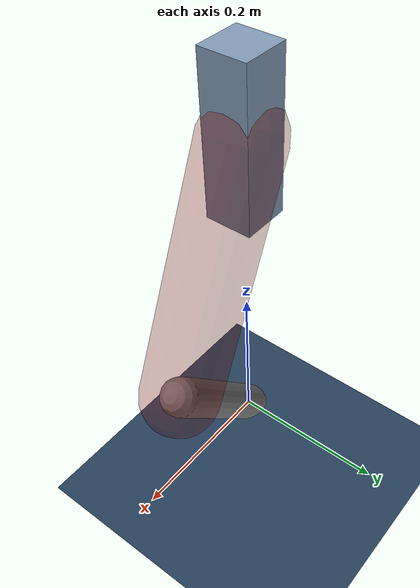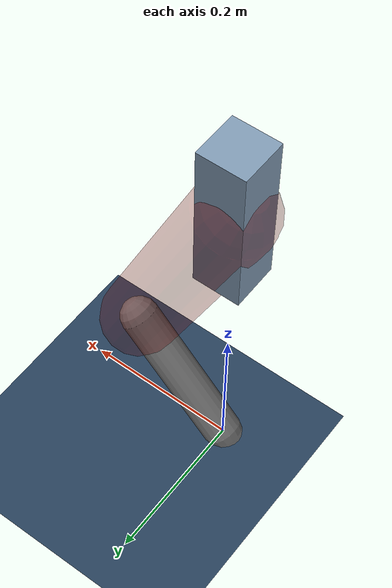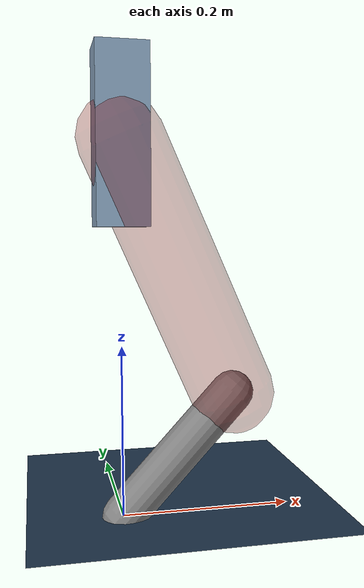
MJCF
<mujoco model="Hopper2D">
	<compiler inertiafromgeom="true" angle="radian" />
	<option timestep="0.001" integrator="implicit" cone="elliptic" solver="Newton" tolerance="1e-10" />

	<default>
		<geom contype="1" conaffinity="1" condim="3" friction="2 0.005 0.0001" solref="0.005 1" />
		<joint limited="true" damping="0.1" />
	</default>

	<asset>
		<texture name="skybox" type="skybox" builtin="gradient" rgb1=".4 .6 .8" rgb2="0 0 0" width="800" height="800" />
		<texture name="grid" type="2d" builtin="checker" rgb1=".1 .2 .3" rgb2=".2 .3 .4" width="300" height="300" mark="edge" markrgb=".2 .3 .4" />
		<material name="ground" texture="grid" texrepeat="1 1" texuniform="true" reflectance="0.1" />
		<material name="leg" rgba="0.5 0.6 0.7 1" />
	</asset>

	<worldbody>

		<geom name="floor" type="plane" size="5 5 0.25" material="ground" />

		<light directional="false" diffuse="0.8 0.8 0.8" specular="0.3 0.3 0.3" pos="0 0 2" dir="0 0 -1" />
		<light mode="targetbodycom" target="base" directional="false" diffuse="0.8 0.8 0.8" specular="0.3 0.3 0.3" pos="0 0 2" dir="0 0 -1" />

		<camera name="fixed" pos="0 -2 1" xyaxes="1 0 0 0 0 1" />
		<camera name="tracking" mode="trackcom" pos="0 -3 1" />

		<body name="root" pos="0 0 0.43713021843976">
			<joint name="slide_x" type="slide" axis="1 0 0" range="-100 100" />
			<joint name="slide_z" type="slide" axis="0 0 1" range="0 10" />

			<body name="base" pos="0 0 0">
				<geom name="torso" type="box" size="0.03 0.03 0.1" mass="2.065" material="leg" />

				<body name="link1" pos="0 0 0" euler="0 1.1523655839998268 0">
					<joint type="hinge" axis="0 -1 0" pos="0 0 0" name="hinge1" limited="true" range="-3.14 3.14" stiffness="0" damping="0.1" />
					<geom name="thigh" type="capsule" fromto="0 0 0 0.32296842756279814 0 0" size="0.05" rgba="0.5 0 0 0.3" mass="1.0514115971758349" />

					<body name="link2" pos="0.32296842756279814 0 0" euler="0 1.1643472482789585 0">
						<joint type="hinge" axis="0 -1 0" pos="0 0 0" name="hinge2" limited="true" range="-3.14 3.14" stiffness="0" damping="0.1" />
						<geom name="shank" type="capsule" fromto="0 0 0 0.19337175135027448 0 0" size="0.025" mass="0.3952974010802196" />

					</body>
				</body>
			</body>
		</body>
	</worldbody>

	<actuator>
		<motor name="torque1" joint="hinge1" ctrlrange="-78.9989203584913 78.9989203584913" ctrllimited="true" gear="1" />
		<motor name="torque2" joint="hinge2" ctrlrange="-78.19088462802924 78.19088462802924" ctrllimited="true" gear="1" />
	</actuator>
</mujoco>
